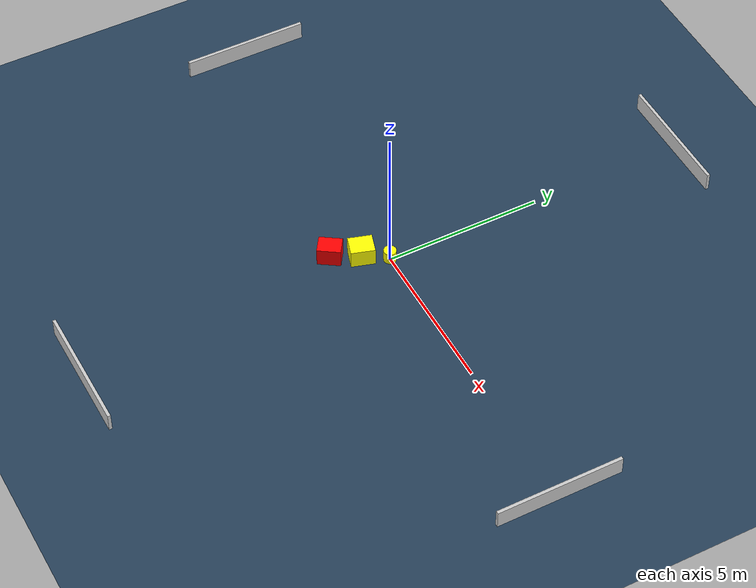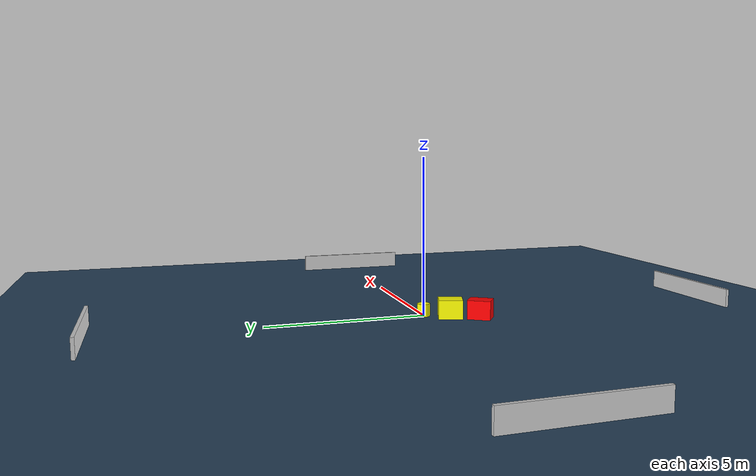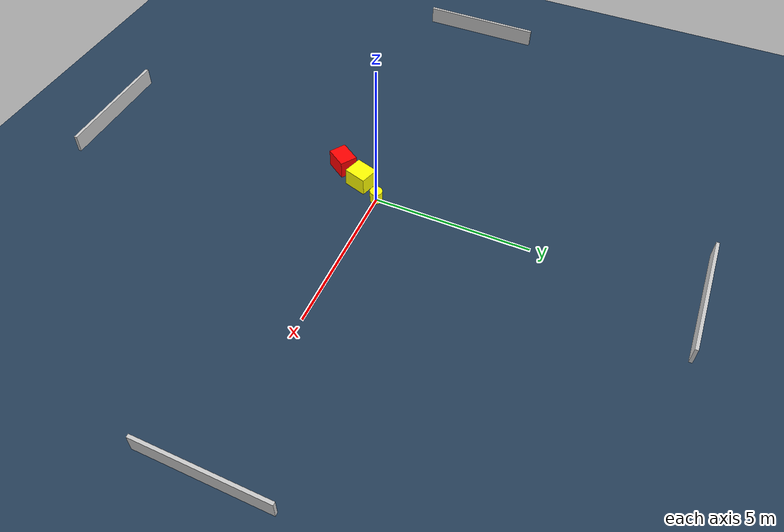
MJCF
<?xml version="1.0" ?>
<mujoco model="generated_environment">
  <option timestep="0.01" integrator="RK4" cone="elliptic"/>
  <default>
    <geom density="1"/>
  </default>
  <asset>
    <texture builtin="gradient" height="3072" name="skybox" rgb1="0.3 0.5 0.7" rgb2="0 0 0" type="skybox" width="512"/>
    <texture builtin="checker" height="300" name="groundplane" rgb1="0.2 0.3 0.4" rgb2="0.1 0.2 0.3" type="2d" width="300"/>
    <material name="groundplane" reflectance="0.2" texrepeat="5 5" texture="groundplane"/>
  </asset>
  <worldbody>
    <light dir="0 0 -1" directional="true" pos="0 0 1.5"/>
    <geom condim="3" friction="0.5 0.005 0.001" material="groundplane" name="floor" pos="0 0 0" size="0 0 0.05" type="plane"/>
    <body name="walls">
      <geom name="wall_1" condim="4" pos="-10.0 0.0 0.3" rgba="0.800000011920929 0.800000011920929 0.800000011920929 1.0" size="0.05 2.0 0.3" type="box"/>
      <geom name="wall_2" condim="4" pos="10.0 0.0 0.3" rgba="0.800000011920929 0.800000011920929 0.800000011920929 1.0" size="0.05 2.0 0.3" type="box"/>
      <geom name="wall_3" condim="4" pos="0.0 -10.0 0.3" rgba="0.800000011920929 0.800000011920929 0.800000011920929 1.0" size="2.0 0.05 0.3" type="box"/>
      <geom name="wall_4" condim="4" pos="0.0 10.0 0.3" rgba="0.800000011920929 0.800000011920929 0.800000011920929 1.0" size="2.0 0.05 0.3" type="box"/>
    </body>
    <body name="robot">
      <joint name="joint_x" type="slide" pos="0 0 0" axis="1 0 0"/>
      <joint name="joint_y" type="slide" pos="0 0 0" axis="0 1 0"/>
      <geom name="robot" type="cylinder" pos="0.0 0.0 0.2" size="0.2 0.2 0.0" mass="5.0" friction="1.0 0.005 0.0001" condim="4" rgba="1.0 1.0 0.0 1.0"/>
    </body>
    <body name="obstacle_1_movable">
      <geom name="obstacle_1_movable" condim="4" pos="-0.45770056046896695 -0.7287070966284876 0.3" euler="0 0 252.82450005516398" friction="0.0 0.005 0.001" rgba="1.0 1.0 0.0 1.0" size="0.37664910999343715 0.31703098378584865 0.3" type="box" mass="0.1"/>
      <joint type="free"/>
    </body>
    <body name="obstacle_2_static">
      <geom name="obstacle_2_static" condim="4" pos="-0.8859945747561997 -1.5734470453027212 0.3" euler="0 0 326.41242527990727" friction="0.0 0.005 0.001" rgba="1.0 0.0 0.0 1.0" size="0.2833586830058733 0.36554523316749044 0.3" type="box"/>
    </body>
  </worldbody>
  <actuator>
    <motor name="actuator_x" joint="joint_x" gear="1" ctrlrange="-1 1"/>
    <motor name="actuator_y" joint="joint_y" gear="1" ctrlrange="-1 1"/>
  </actuator>
</mujoco>
